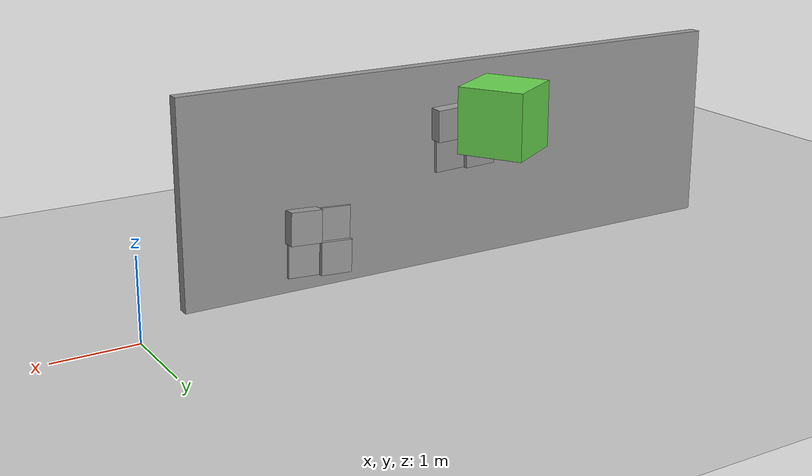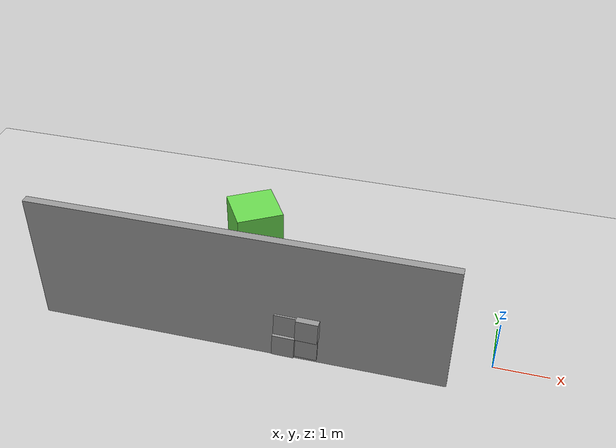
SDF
<sdf version="1.7">
 <world name="default">
  <model name="demo_clean">
   <static>1</static>
   <link name="Wall_4">
    <collision name="Wall_4_Collision">
     <geometry><box><size>7.5 0.15 2.5</size></box></geometry>
     <pose>0 0 1.25 0 -0 0</pose>
     <surface>
      <friction>
       <ode><mu>1</mu><mu2>1</mu2><fdir1>0 0 0</fdir1><slip1>0</slip1><slip2>0</slip2></ode>
       <torsional>
        <coefficient>1</coefficient>
        <patch_radius>0</patch_radius>
        <surface_radius>0</surface_radius>
        <use_patch_radius>1</use_patch_radius>
        <ode><slip>0</slip></ode>
       </torsional>
      </friction>
      <bounce><restitution_coefficient>0</restitution_coefficient><threshold>1e+06</threshold></bounce>
      <contact>
       <collide_without_contact>0</collide_without_contact>
       <collide_without_contact_bitmask>1</collide_without_contact_bitmask>
       <collide_bitmask>1</collide_bitmask>
       <ode>
        <soft_cfm>0</soft_cfm>
        <soft_erp>0.2</soft_erp>
        <kp>1e+13</kp>
        <kd>1</kd>
        <max_vel>0.01</max_vel>
        <min_depth>0</min_depth>
       </ode>
       <bullet>
        <split_impulse>1</split_impulse>
        <split_impulse_penetration_threshold>-0.01</split_impulse_penetration_threshold>
        <soft_cfm>0</soft_cfm>
        <soft_erp>0.2</soft_erp>
        <kp>1e+13</kp>
        <kd>1</kd>
       </bullet>
      </contact>
     </surface>
    </collision>
    <visual name="Wall_4_Visual">
     <geometry><box><size>7.5 0.15 2.5</size></box></geometry>
     <material>
      <script><name>Gazebo/Grey</name><uri>file://media/materials/scripts/gazebo.material</uri></script>
      <ambient>1 1 1 1</ambient>
      <shader type="pixel"><normal_map>default</normal_map></shader>
     </material>
     <pose>0 0 1.25 0 -0 0</pose>
    </visual>
    <pose>-4.47149 -0.608824 0 0 -0 3.14159</pose>
   </link>
  </model>
  <model name="dyn_box_8">
   <pose>-4.40399 0.361189 2 0 0 -2.58774</pose>
   <static>1</static>
   <allow_auto_disable>0</allow_auto_disable>
   <link name="link">
    <collision name="collision">
     <geometry><box><size>0.8 0.8 0.8</size></box></geometry>
     <max_contacts>20</max_contacts>
    </collision>
    <visual name="visual">
     <geometry><box><size>0.8 0.8 0.8</size></box></geometry>
     <material>
      <ambient>0.411765 0.847059 0.309804 1</ambient>
      <diffuse>0.411765 0.847059 0.309804 1</diffuse>
     </material>
    </visual>
   </link>
  </model>
  <model name="ground_plane">
   <static>1</static>
   <link name="link">
    <collision name="collision">
     <geometry><plane><normal>0 0 1</normal><size>100 100</size></plane></geometry>
     <surface>
      <contact><collide_bitmask>65535</collide_bitmask></contact>
      <friction><ode><mu>100</mu><mu2>50</mu2></ode></friction>
     </surface>
    </collision>
    <visual name="visual">
     <cast_shadows>0</cast_shadows>
     <geometry><plane><normal>0 0 1</normal><size>100 100</size></plane></geometry>
     <material>
      <script><uri>file://media/materials/scripts/gazebo.material</uri><name>Gazebo/Grey</name></script>
     </material>
    </visual>
   </link>
  </model>
  <model name="wall_slate_10">
   <static>1</static>
   <link name="link_0">
    <inertial><mass>1</mass></inertial>
    <gravity>0</gravity>
    <visual name="visual">
     <pose>0 0.2 0.2 0 -0 0</pose>
     <geometry><box><size>0.16 0.4 0.4</size></box></geometry>
     <material>
      <lighting>1</lighting>
      <script><uri>file://media/materials/scripts/gazebo.material</uri><name>Gazebo/Grey</name></script>
      <shader type="pixel"><normal_map>__default__</normal_map></shader>
      <ambient>0.3 0.3 0.3 1</ambient>
      <diffuse>0.7 0.7 0.7 1</diffuse>
      <specular>0.01 0.01 0.01 1</specular>
      <emissive>0 0 0 1</emissive>
     </material>
    </visual>
    <visual name="ModelPreview_0::link_0::visual_1">
     <pose>0 0.2 -0.2 0 -0 0</pose>
     <geometry><box><size>0.04 0.4 0.4</size></box></geometry>
     <material>
      <lighting>1</lighting>
      <script><uri>file://media/materials/scripts/gazebo.material</uri><name>Gazebo/Grey</name></script>
      <shader type="pixel"><normal_map>__default__</normal_map></shader>
      <ambient>0.3 0.3 0.3 1</ambient>
      <diffuse>0.7 0.7 0.7 1</diffuse>
      <specular>0.01 0.01 0.01 1</specular>
      <emissive>0 0 0 1</emissive>
     </material>
    </visual>
    <visual name="ModelPreview_0::link_0::visual_2">
     <pose>0 -0.2 0.2 0 -0 0</pose>
     <geometry><box><size>0.04 0.4 0.4</size></box></geometry>
     <material>
      <lighting>1</lighting>
      <script><uri>file://media/materials/scripts/gazebo.material</uri><name>Gazebo/Grey</name></script>
      <shader type="pixel"><normal_map>__default__</normal_map></shader>
      <ambient>0.3 0.3 0.3 1</ambient>
      <diffuse>0.7 0.7 0.7 1</diffuse>
      <specular>0.01 0.01 0.01 1</specular>
      <emissive>0 0 0 1</emissive>
     </material>
    </visual>
    <visual name="ModelPreview_0::link_0::visual_3">
     <pose>0 -0.2 -0.2 0 -0 0</pose>
     <geometry><box><size>0.16 0.4 0.4</size></box></geometry>
     <material>
      <lighting>1</lighting>
      <script><uri>file://media/materials/scripts/gazebo.material</uri><name>Gazebo/Grey</name></script>
      <shader type="pixel"><normal_map>__default__</normal_map></shader>
      <ambient>0.3 0.3 0.3 1</ambient>
      <diffuse>0.7 0.7 0.7 1</diffuse>
      <specular>0.01 0.01 0.01 1</specular>
      <emissive>0 0 0 1</emissive>
     </material>
    </visual>
    <collision name="collision_2">
     <pose>0 -0.2 0.2 0 -0 0</pose>
     <geometry><box><size>0.04 0.4 0.4</size></box></geometry>
     <surface>
      <friction>
       <ode><mu>1</mu><mu2>1</mu2><fdir1>0 0 0</fdir1><slip1>0</slip1><slip2>0</slip2></ode>
       <torsional>
        <coefficient>1</coefficient>
        <patch_radius>0</patch_radius>
        <surface_radius>0</surface_radius>
        <use_patch_radius>1</use_patch_radius>
        <ode><slip>0</slip></ode>
       </torsional>
      </friction>
      <bounce><restitution_coefficient>0</restitution_coefficient><threshold>1e+06</threshold></bounce>
      <contact>
       <collide_without_contact>0</collide_without_contact>
       <collide_without_contact_bitmask>1</collide_without_contact_bitmask>
       <collide_bitmask>1</collide_bitmask>
       <ode>
        <soft_cfm>0</soft_cfm>
        <soft_erp>0.2</soft_erp>
        <kp>1e+13</kp>
        <kd>1</kd>
        <max_vel>0.01</max_vel>
        <min_depth>0</min_depth>
       </ode>
       <bullet>
        <split_impulse>1</split_impulse>
        <split_impulse_penetration_threshold>-0.01</split_impulse_penetration_threshold>
        <soft_cfm>0</soft_cfm>
        <soft_erp>0.2</soft_erp>
        <kp>1e+13</kp>
        <kd>1</kd>
       </bullet>
      </contact>
     </surface>
    </collision>
    <collision name="collision_1">
     <pose>0 0.2 -0.2 0 -0 0</pose>
     <geometry><box><size>0.04 0.4 0.4</size></box></geometry>
     <surface>
      <friction>
       <ode><mu>1</mu><mu2>1</mu2><fdir1>0 0 0</fdir1><slip1>0</slip1><slip2>0</slip2></ode>
       <torsional>
        <coefficient>1</coefficient>
        <patch_radius>0</patch_radius>
        <surface_radius>0</surface_radius>
        <use_patch_radius>1</use_patch_radius>
        <ode><slip>0</slip></ode>
       </torsional>
      </friction>
      <bounce><restitution_coefficient>0</restitution_coefficient><threshold>1e+06</threshold></bounce>
      <contact>
       <collide_without_contact>0</collide_without_contact>
       <collide_without_contact_bitmask>1</collide_without_contact_bitmask>
       <collide_bitmask>1</collide_bitmask>
       <ode>
        <soft_cfm>0</soft_cfm>
        <soft_erp>0.2</soft_erp>
        <kp>1e+13</kp>
        <kd>1</kd>
        <max_vel>0.01</max_vel>
        <min_depth>0</min_depth>
       </ode>
       <bullet>
        <split_impulse>1</split_impulse>
        <split_impulse_penetration_threshold>-0.01</split_impulse_penetration_threshold>
        <soft_cfm>0</soft_cfm>
        <soft_erp>0.2</soft_erp>
        <kp>1e+13</kp>
        <kd>1</kd>
       </bullet>
      </contact>
     </surface>
    </collision>
    <collision name="collision_4">
     <pose>0 0.2 0.2 0 -0 0</pose>
     <geometry><box><size>0.16 0.4 0.4</size></box></geometry>
     <surface>
      <friction>
       <ode><mu>1</mu><mu2>1</mu2><fdir1>0 0 0</fdir1><slip1>0</slip1><slip2>0</slip2></ode>
       <torsional>
        <coefficient>1</coefficient>
        <patch_radius>0</patch_radius>
        <surface_radius>0</surface_radius>
        <use_patch_radius>1</use_patch_radius>
        <ode><slip>0</slip></ode>
       </torsional>
      </friction>
      <bounce><restitution_coefficient>0</restitution_coefficient><threshold>1e+06</threshold></bounce>
      <contact>
       <collide_without_contact>0</collide_without_contact>
       <collide_without_contact_bitmask>1</collide_without_contact_bitmask>
       <collide_bitmask>1</collide_bitmask>
       <ode>
        <soft_cfm>0</soft_cfm>
        <soft_erp>0.2</soft_erp>
        <kp>1e+13</kp>
        <kd>1</kd>
        <max_vel>0.01</max_vel>
        <min_depth>0</min_depth>
       </ode>
       <bullet>
        <split_impulse>1</split_impulse>
        <split_impulse_penetration_threshold>-0.01</split_impulse_penetration_threshold>
        <soft_cfm>0</soft_cfm>
        <soft_erp>0.2</soft_erp>
        <kp>1e+13</kp>
        <kd>1</kd>
       </bullet>
      </contact>
     </surface>
    </collision>
    <collision name="collision_3">
     <pose>0 -0.2 -0.2 0 -0 0</pose>
     <geometry><box><size>0.16 0.4 0.4</size></box></geometry>
     <surface>
      <friction>
       <ode><mu>1</mu><mu2>1</mu2><fdir1>0 0 0</fdir1><slip1>0</slip1><slip2>0</slip2></ode>
       <torsional>
        <coefficient>1</coefficient>
        <patch_radius>0</patch_radius>
        <surface_radius>0</surface_radius>
        <use_patch_radius>1</use_patch_radius>
        <ode><slip>0</slip></ode>
       </torsional>
      </friction>
      <bounce><restitution_coefficient>0</restitution_coefficient><threshold>1e+06</threshold></bounce>
      <contact>
       <collide_without_contact>0</collide_without_contact>
       <collide_without_contact_bitmask>1</collide_without_contact_bitmask>
       <collide_bitmask>1</collide_bitmask>
       <ode>
        <soft_cfm>0</soft_cfm>
        <soft_erp>0.2</soft_erp>
        <kp>1e+13</kp>
        <kd>1</kd>
        <max_vel>0.01</max_vel>
        <min_depth>0</min_depth>
       </ode>
       <bullet>
        <split_impulse>1</split_impulse>
        <split_impulse_penetration_threshold>-0.01</split_impulse_penetration_threshold>
        <soft_cfm>0</soft_cfm>
        <soft_erp>0.2</soft_erp>
        <kp>1e+13</kp>
        <kd>1</kd>
       </bullet>
      </contact>
     </surface>
    </collision>
   </link>
   <pose>-4.37149 -0.433824 1.6 -0.04 -0.06 -1.5659</pose>
  </model>
  <model name="wall_slate_53">
   <static>1</static>
   <link name="link_0">
    <inertial><mass>1</mass></inertial>
    <gravity>0</gravity>
    <visual name="visual">
     <pose>0 0.2 0.2 0 -0 0</pose>
     <geometry><box><size>0.16 0.4 0.4</size></box></geometry>
     <material>
      <lighting>1</lighting>
      <script><uri>file://media/materials/scripts/gazebo.material</uri><name>Gazebo/Grey</name></script>
      <shader type="pixel"><normal_map>__default__</normal_map></shader>
      <ambient>0.3 0.3 0.3 1</ambient>
      <diffuse>0.7 0.7 0.7 1</diffuse>
      <specular>0.01 0.01 0.01 1</specular>
      <emissive>0 0 0 1</emissive>
     </material>
    </visual>
    <visual name="ModelPreview_0::link_0::visual_1">
     <pose>0 0.2 -0.2 0 -0 0</pose>
     <geometry><box><size>0.04 0.4 0.4</size></box></geometry>
     <material>
      <lighting>1</lighting>
      <script><uri>file://media/materials/scripts/gazebo.material</uri><name>Gazebo/Grey</name></script>
      <shader type="pixel"><normal_map>__default__</normal_map></shader>
      <ambient>0.3 0.3 0.3 1</ambient>
      <diffuse>0.7 0.7 0.7 1</diffuse>
      <specular>0.01 0.01 0.01 1</specular>
      <emissive>0 0 0 1</emissive>
     </material>
    </visual>
    <visual name="ModelPreview_0::link_0::visual_2">
     <pose>0 -0.2 0.2 0 -0 0</pose>
     <geometry><box><size>0.04 0.4 0.4</size></box></geometry>
     <material>
      <lighting>1</lighting>
      <script><uri>file://media/materials/scripts/gazebo.material</uri><name>Gazebo/Grey</name></script>
      <shader type="pixel"><normal_map>__default__</normal_map></shader>
      <ambient>0.3 0.3 0.3 1</ambient>
      <diffuse>0.7 0.7 0.7 1</diffuse>
      <specular>0.01 0.01 0.01 1</specular>
      <emissive>0 0 0 1</emissive>
     </material>
    </visual>
    <visual name="ModelPreview_0::link_0::visual_3">
     <pose>0 -0.2 -0.2 0 -0 0</pose>
     <geometry><box><size>0.16 0.4 0.4</size></box></geometry>
     <material>
      <lighting>1</lighting>
      <script><uri>file://media/materials/scripts/gazebo.material</uri><name>Gazebo/Grey</name></script>
      <shader type="pixel"><normal_map>__default__</normal_map></shader>
      <ambient>0.3 0.3 0.3 1</ambient>
      <diffuse>0.7 0.7 0.7 1</diffuse>
      <specular>0.01 0.01 0.01 1</specular>
      <emissive>0 0 0 1</emissive>
     </material>
    </visual>
    <collision name="collision_2">
     <pose>0 -0.2 0.2 0 -0 0</pose>
     <geometry><box><size>0.04 0.4 0.4</size></box></geometry>
     <surface>
      <friction>
       <ode><mu>1</mu><mu2>1</mu2><fdir1>0 0 0</fdir1><slip1>0</slip1><slip2>0</slip2></ode>
       <torsional>
        <coefficient>1</coefficient>
        <patch_radius>0</patch_radius>
        <surface_radius>0</surface_radius>
        <use_patch_radius>1</use_patch_radius>
        <ode><slip>0</slip></ode>
       </torsional>
      </friction>
      <bounce><restitution_coefficient>0</restitution_coefficient><threshold>1e+06</threshold></bounce>
      <contact>
       <collide_without_contact>0</collide_without_contact>
       <collide_without_contact_bitmask>1</collide_without_contact_bitmask>
       <collide_bitmask>1</collide_bitmask>
       <ode>
        <soft_cfm>0</soft_cfm>
        <soft_erp>0.2</soft_erp>
        <kp>1e+13</kp>
        <kd>1</kd>
        <max_vel>0.01</max_vel>
        <min_depth>0</min_depth>
       </ode>
       <bullet>
        <split_impulse>1</split_impulse>
        <split_impulse_penetration_threshold>-0.01</split_impulse_penetration_threshold>
        <soft_cfm>0</soft_cfm>
        <soft_erp>0.2</soft_erp>
        <kp>1e+13</kp>
        <kd>1</kd>
       </bullet>
      </contact>
     </surface>
    </collision>
    <collision name="collision_1">
     <pose>0 0.2 -0.2 0 -0 0</pose>
     <geometry><box><size>0.04 0.4 0.4</size></box></geometry>
     <surface>
      <friction>
       <ode><mu>1</mu><mu2>1</mu2><fdir1>0 0 0</fdir1><slip1>0</slip1><slip2>0</slip2></ode>
       <torsional>
        <coefficient>1</coefficient>
        <patch_radius>0</patch_radius>
        <surface_radius>0</surface_radius>
        <use_patch_radius>1</use_patch_radius>
        <ode><slip>0</slip></ode>
       </torsional>
      </friction>
      <bounce><restitution_coefficient>0</restitution_coefficient><threshold>1e+06</threshold></bounce>
      <contact>
       <collide_without_contact>0</collide_without_contact>
       <collide_without_contact_bitmask>1</collide_without_contact_bitmask>
       <collide_bitmask>1</collide_bitmask>
       <ode>
        <soft_cfm>0</soft_cfm>
        <soft_erp>0.2</soft_erp>
        <kp>1e+13</kp>
        <kd>1</kd>
        <max_vel>0.01</max_vel>
        <min_depth>0</min_depth>
       </ode>
       <bullet>
        <split_impulse>1</split_impulse>
        <split_impulse_penetration_threshold>-0.01</split_impulse_penetration_threshold>
        <soft_cfm>0</soft_cfm>
        <soft_erp>0.2</soft_erp>
        <kp>1e+13</kp>
        <kd>1</kd>
       </bullet>
      </contact>
     </surface>
    </collision>
    <collision name="collision_4">
     <pose>0 0.2 0.2 0 -0 0</pose>
     <geometry><box><size>0.16 0.4 0.4</size></box></geometry>
     <surface>
      <friction>
       <ode><mu>1</mu><mu2>1</mu2><fdir1>0 0 0</fdir1><slip1>0</slip1><slip2>0</slip2></ode>
       <torsional>
        <coefficient>1</coefficient>
        <patch_radius>0</patch_radius>
        <surface_radius>0</surface_radius>
        <use_patch_radius>1</use_patch_radius>
        <ode><slip>0</slip></ode>
       </torsional>
      </friction>
      <bounce><restitution_coefficient>0</restitution_coefficient><threshold>1e+06</threshold></bounce>
      <contact>
       <collide_without_contact>0</collide_without_contact>
       <collide_without_contact_bitmask>1</collide_without_contact_bitmask>
       <collide_bitmask>1</collide_bitmask>
       <ode>
        <soft_cfm>0</soft_cfm>
        <soft_erp>0.2</soft_erp>
        <kp>1e+13</kp>
        <kd>1</kd>
        <max_vel>0.01</max_vel>
        <min_depth>0</min_depth>
       </ode>
       <bullet>
        <split_impulse>1</split_impulse>
        <split_impulse_penetration_threshold>-0.01</split_impulse_penetration_threshold>
        <soft_cfm>0</soft_cfm>
        <soft_erp>0.2</soft_erp>
        <kp>1e+13</kp>
        <kd>1</kd>
       </bullet>
      </contact>
     </surface>
    </collision>
    <collision name="collision_3">
     <pose>0 -0.2 -0.2 0 -0 0</pose>
     <geometry><box><size>0.16 0.4 0.4</size></box></geometry>
     <surface>
      <friction>
       <ode><mu>1</mu><mu2>1</mu2><fdir1>0 0 0</fdir1><slip1>0</slip1><slip2>0</slip2></ode>
       <torsional>
        <coefficient>1</coefficient>
        <patch_radius>0</patch_radius>
        <surface_radius>0</surface_radius>
        <use_patch_radius>1</use_patch_radius>
        <ode><slip>0</slip></ode>
       </torsional>
      </friction>
      <bounce><restitution_coefficient>0</restitution_coefficient><threshold>1e+06</threshold></bounce>
      <contact>
       <collide_without_contact>0</collide_without_contact>
       <collide_without_contact_bitmask>1</collide_without_contact_bitmask>
       <collide_bitmask>1</collide_bitmask>
       <ode>
        <soft_cfm>0</soft_cfm>
        <soft_erp>0.2</soft_erp>
        <kp>1e+13</kp>
        <kd>1</kd>
        <max_vel>0.01</max_vel>
        <min_depth>0</min_depth>
       </ode>
       <bullet>
        <split_impulse>1</split_impulse>
        <split_impulse_penetration_threshold>-0.01</split_impulse_penetration_threshold>
        <soft_cfm>0</soft_cfm>
        <soft_erp>0.2</soft_erp>
        <kp>1e+13</kp>
        <kd>1</kd>
       </bullet>
      </contact>
     </surface>
    </collision>
   </link>
   <pose>-2.37149 -0.433818 0.6 0.06 0.04 -1.5659</pose>
  </model>
  <model name="wall_slate_71">
   <static>1</static>
   <link name="link_0">
    <inertial><mass>1</mass></inertial>
    <gravity>0</gravity>
    <visual name="visual">
     <pose>0 0.2 0.2 0 -0 0</pose>
     <geometry><box><size>0.16 0.4 0.4</size></box></geometry>
     <material>
      <lighting>1</lighting>
      <script><uri>file://media/materials/scripts/gazebo.material</uri><name>Gazebo/Grey</name></script>
      <shader type="pixel"><normal_map>__default__</normal_map></shader>
      <ambient>0.3 0.3 0.3 1</ambient>
      <diffuse>0.7 0.7 0.7 1</diffuse>
      <specular>0.01 0.01 0.01 1</specular>
      <emissive>0 0 0 1</emissive>
     </material>
    </visual>
    <visual name="ModelPreview_0::link_0::visual_1">
     <pose>0 0.2 -0.2 0 -0 0</pose>
     <geometry><box><size>0.04 0.4 0.4</size></box></geometry>
     <material>
      <lighting>1</lighting>
      <script><uri>file://media/materials/scripts/gazebo.material</uri><name>Gazebo/Grey</name></script>
      <shader type="pixel"><normal_map>__default__</normal_map></shader>
      <ambient>0.3 0.3 0.3 1</ambient>
      <diffuse>0.7 0.7 0.7 1</diffuse>
      <specular>0.01 0.01 0.01 1</specular>
      <emissive>0 0 0 1</emissive>
     </material>
    </visual>
    <visual name="ModelPreview_0::link_0::visual_2">
     <pose>0 -0.2 0.2 0 -0 0</pose>
     <geometry><box><size>0.04 0.4 0.4</size></box></geometry>
     <material>
      <lighting>1</lighting>
      <script><uri>file://media/materials/scripts/gazebo.material</uri><name>Gazebo/Grey</name></script>
      <shader type="pixel"><normal_map>__default__</normal_map></shader>
      <ambient>0.3 0.3 0.3 1</ambient>
      <diffuse>0.7 0.7 0.7 1</diffuse>
      <specular>0.01 0.01 0.01 1</specular>
      <emissive>0 0 0 1</emissive>
     </material>
    </visual>
    <visual name="ModelPreview_0::link_0::visual_3">
     <pose>0 -0.2 -0.2 0 -0 0</pose>
     <geometry><box><size>0.16 0.4 0.4</size></box></geometry>
     <material>
      <lighting>1</lighting>
      <script><uri>file://media/materials/scripts/gazebo.material</uri><name>Gazebo/Grey</name></script>
      <shader type="pixel"><normal_map>__default__</normal_map></shader>
      <ambient>0.3 0.3 0.3 1</ambient>
      <diffuse>0.7 0.7 0.7 1</diffuse>
      <specular>0.01 0.01 0.01 1</specular>
      <emissive>0 0 0 1</emissive>
     </material>
    </visual>
    <collision name="collision_2">
     <pose>0 -0.2 0.2 0 -0 0</pose>
     <geometry><box><size>0.04 0.4 0.4</size></box></geometry>
     <surface>
      <friction>
       <ode><mu>1</mu><mu2>1</mu2><fdir1>0 0 0</fdir1><slip1>0</slip1><slip2>0</slip2></ode>
       <torsional>
        <coefficient>1</coefficient>
        <patch_radius>0</patch_radius>
        <surface_radius>0</surface_radius>
        <use_patch_radius>1</use_patch_radius>
        <ode><slip>0</slip></ode>
       </torsional>
      </friction>
      <bounce><restitution_coefficient>0</restitution_coefficient><threshold>1e+06</threshold></bounce>
      <contact>
       <collide_without_contact>0</collide_without_contact>
       <collide_without_contact_bitmask>1</collide_without_contact_bitmask>
       <collide_bitmask>1</collide_bitmask>
       <ode>
        <soft_cfm>0</soft_cfm>
        <soft_erp>0.2</soft_erp>
        <kp>1e+13</kp>
        <kd>1</kd>
        <max_vel>0.01</max_vel>
        <min_depth>0</min_depth>
       </ode>
       <bullet>
        <split_impulse>1</split_impulse>
        <split_impulse_penetration_threshold>-0.01</split_impulse_penetration_threshold>
        <soft_cfm>0</soft_cfm>
        <soft_erp>0.2</soft_erp>
        <kp>1e+13</kp>
        <kd>1</kd>
       </bullet>
      </contact>
     </surface>
    </collision>
    <collision name="collision_1">
     <pose>0 0.2 -0.2 0 -0 0</pose>
     <geometry><box><size>0.04 0.4 0.4</size></box></geometry>
     <surface>
      <friction>
       <ode><mu>1</mu><mu2>1</mu2><fdir1>0 0 0</fdir1><slip1>0</slip1><slip2>0</slip2></ode>
       <torsional>
        <coefficient>1</coefficient>
        <patch_radius>0</patch_radius>
        <surface_radius>0</surface_radius>
        <use_patch_radius>1</use_patch_radius>
        <ode><slip>0</slip></ode>
       </torsional>
      </friction>
      <bounce><restitution_coefficient>0</restitution_coefficient><threshold>1e+06</threshold></bounce>
      <contact>
       <collide_without_contact>0</collide_without_contact>
       <collide_without_contact_bitmask>1</collide_without_contact_bitmask>
       <collide_bitmask>1</collide_bitmask>
       <ode>
        <soft_cfm>0</soft_cfm>
        <soft_erp>0.2</soft_erp>
        <kp>1e+13</kp>
        <kd>1</kd>
        <max_vel>0.01</max_vel>
        <min_depth>0</min_depth>
       </ode>
       <bullet>
        <split_impulse>1</split_impulse>
        <split_impulse_penetration_threshold>-0.01</split_impulse_penetration_threshold>
        <soft_cfm>0</soft_cfm>
        <soft_erp>0.2</soft_erp>
        <kp>1e+13</kp>
        <kd>1</kd>
       </bullet>
      </contact>
     </surface>
    </collision>
    <collision name="collision_4">
     <pose>0 0.2 0.2 0 -0 0</pose>
     <geometry><box><size>0.16 0.4 0.4</size></box></geometry>
     <surface>
      <friction>
       <ode><mu>1</mu><mu2>1</mu2><fdir1>0 0 0</fdir1><slip1>0</slip1><slip2>0</slip2></ode>
       <torsional>
        <coefficient>1</coefficient>
        <patch_radius>0</patch_radius>
        <surface_radius>0</surface_radius>
        <use_patch_radius>1</use_patch_radius>
        <ode><slip>0</slip></ode>
       </torsional>
      </friction>
      <bounce><restitution_coefficient>0</restitution_coefficient><threshold>1e+06</threshold></bounce>
      <contact>
       <collide_without_contact>0</collide_without_contact>
       <collide_without_contact_bitmask>1</collide_without_contact_bitmask>
       <collide_bitmask>1</collide_bitmask>
       <ode>
        <soft_cfm>0</soft_cfm>
        <soft_erp>0.2</soft_erp>
        <kp>1e+13</kp>
        <kd>1</kd>
        <max_vel>0.01</max_vel>
        <min_depth>0</min_depth>
       </ode>
       <bullet>
        <split_impulse>1</split_impulse>
        <split_impulse_penetration_threshold>-0.01</split_impulse_penetration_threshold>
        <soft_cfm>0</soft_cfm>
        <soft_erp>0.2</soft_erp>
        <kp>1e+13</kp>
        <kd>1</kd>
       </bullet>
      </contact>
     </surface>
    </collision>
    <collision name="collision_3">
     <pose>0 -0.2 -0.2 0 -0 0</pose>
     <geometry><box><size>0.16 0.4 0.4</size></box></geometry>
     <surface>
      <friction>
       <ode><mu>1</mu><mu2>1</mu2><fdir1>0 0 0</fdir1><slip1>0</slip1><slip2>0</slip2></ode>
       <torsional>
        <coefficient>1</coefficient>
        <patch_radius>0</patch_radius>
        <surface_radius>0</surface_radius>
        <use_patch_radius>1</use_patch_radius>
        <ode><slip>0</slip></ode>
       </torsional>
      </friction>
      <bounce><restitution_coefficient>0</restitution_coefficient><threshold>1e+06</threshold></bounce>
      <contact>
       <collide_without_contact>0</collide_without_contact>
       <collide_without_contact_bitmask>1</collide_without_contact_bitmask>
       <collide_bitmask>1</collide_bitmask>
       <ode>
        <soft_cfm>0</soft_cfm>
        <soft_erp>0.2</soft_erp>
        <kp>1e+13</kp>
        <kd>1</kd>
        <max_vel>0.01</max_vel>
        <min_depth>0</min_depth>
       </ode>
       <bullet>
        <split_impulse>1</split_impulse>
        <split_impulse_penetration_threshold>-0.01</split_impulse_penetration_threshold>
        <soft_cfm>0</soft_cfm>
        <soft_erp>0.2</soft_erp>
        <kp>1e+13</kp>
        <kd>1</kd>
       </bullet>
      </contact>
     </surface>
    </collision>
   </link>
   <pose>-3.37149 -0.783821 0.6 -0.02 -0.1 -1.5659</pose>
  </model>
 </world>
</sdf>
